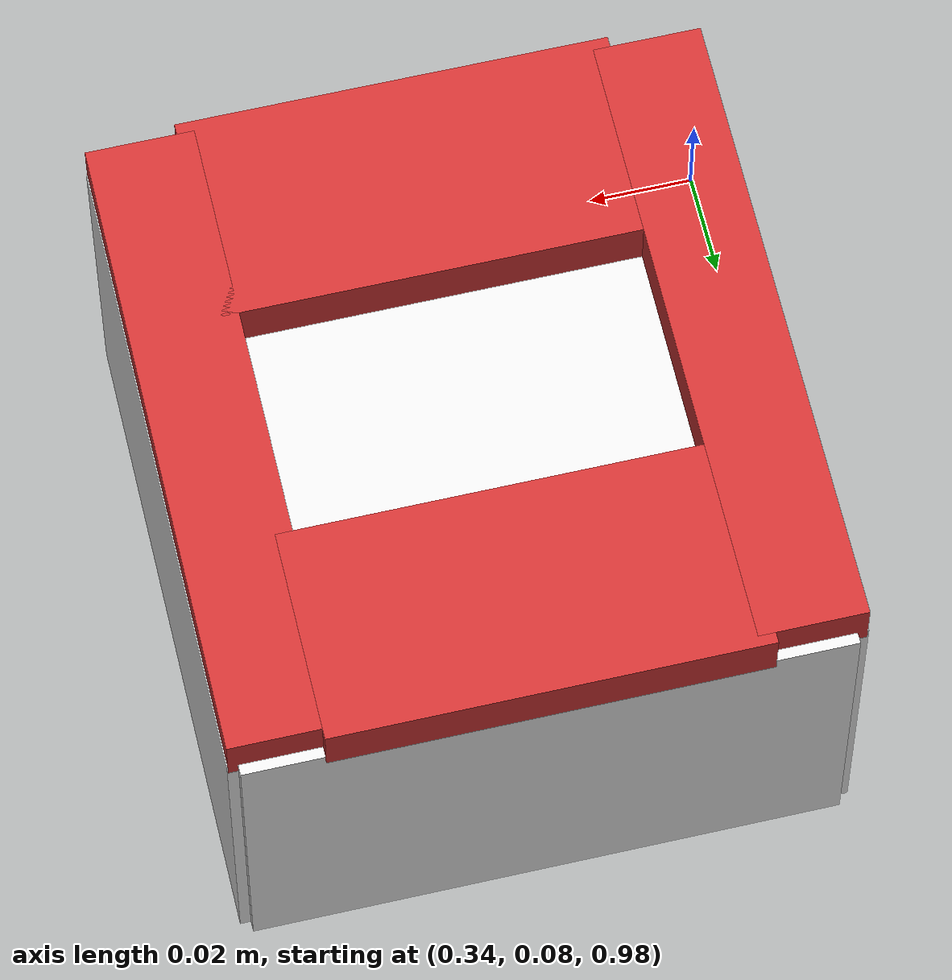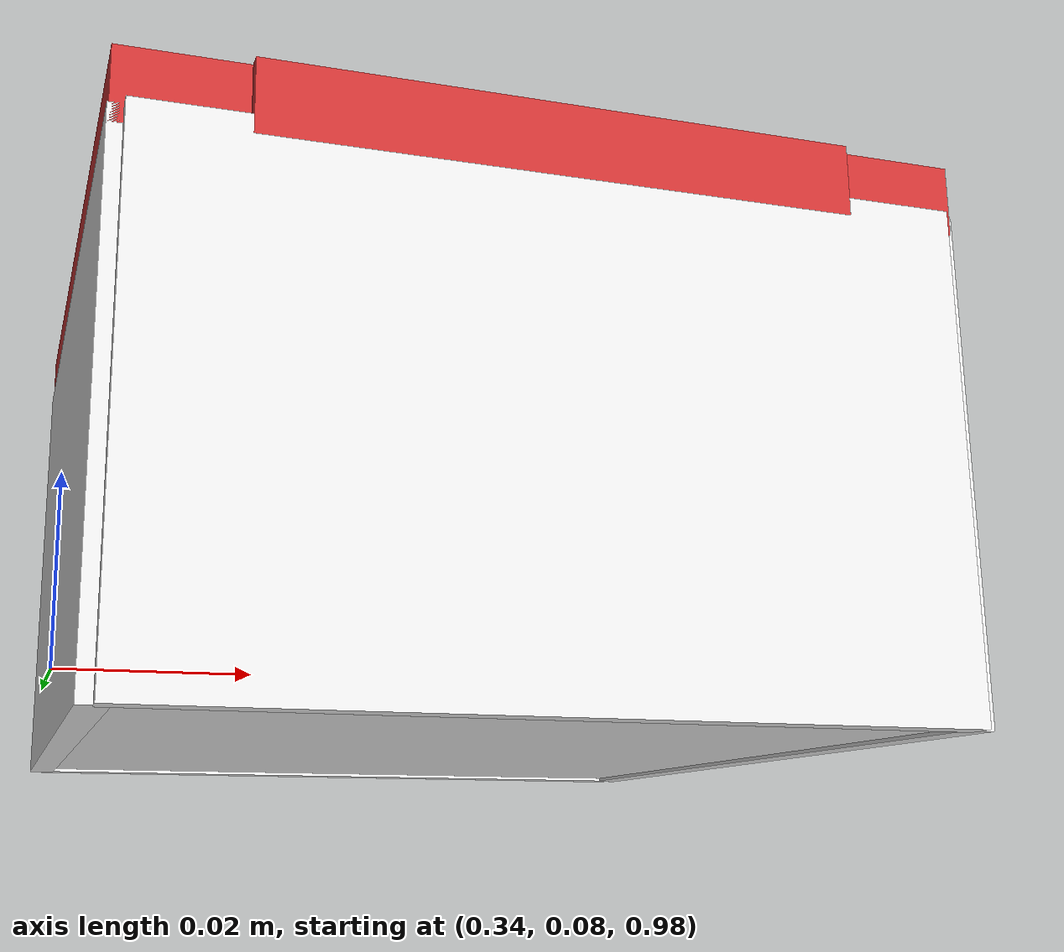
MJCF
<mujoco model="assembly_hole">

  <asset>
    <texture type="2d" name="hole" builtin="flat" rgb1="0.8 0.2 0.2" width="300" height="300"/>
    <material name="hole" texture="hole"/>

     <texture type="2d" name="hole_box" builtin="flat" rgb1="0.9 0.9 0.9" width="300" height="300"/>
    <material name="hole_box" texture="hole_box"/>

  </asset>

  <worldbody>
   <!-- table top is @ 1 m -->
    <body name="hole" pos="0.4 0.15 1.05" quat="1 0 0 0" mocap="true">
      <geom name="interactive_geom" type="box" pos="0.0 0.0 0.02" size="0.01 0.01  0.01" material="hole" group="5"  conaffinity="0" contype="0" />
      <body name="down" pos="-0.00 -0.042 0.0" quat="1 0 0 0">
        <geom name="down_geom" type="box" size="0.04 0.02  0.005" material="hole"/>
      </body>
      <body name="left" pos="-0.0468 0 0.0" quat="1 0 0 0">
        <geom name="left_geom" type="box" size="0.01 0.06 0.005" material="hole"/>
      </body>
      <body name="top" pos="0.0 0.042 0.0" quat="1 0 0 0">
        <geom name="top_geom" type="box" size="0.04 0.02 0.005" material="hole"/>
      </body>
      <body name="right" pos="0.0468 0 0.0" quat="1 0 0 0">
        <geom name="right_geom" type="box" size="0.01 0.06 0.005" material="hole"/>
      </body>
        <site name="hole_site" pos="0 0 -0.03" size="0.01" rgba="0.5 0.0 0.0 0.3" group="5"/>

      <body name="down_box" pos="-0.00 -0.06 -0.0375" quat="1 0 0 0">
        <geom name="down_box_geom" type="box" size="0.055 0.002  0.035" material="hole_box"/>
      </body>
      <body name="left_box" pos="-0.055 0 -0.0375" quat="1 0 0 0">
        <geom name="left_box_geom" type="box" size="0.002 0.06 0.035" material="hole_box"/>
      </body>
      <body name="top_box" pos="0.0 0.06 -0.0375" quat="1 0 0 0">
        <geom name="top_box_geom" type="box" size="0.055 0.002 0.035" material="hole_box"/>
      </body>
      <body name="right_box" pos="0.055 0 -0.0375" quat="1 0 0 0">
        <geom name="right_box_geom" type="box" size="0.002 0.06 0.035" material="hole_box"/>
      </body>
      <body name="bottom_box" pos="0.0 0 -0.07" quat="1 0 0 0">
        <geom name="bottom_box_geom" type="box" size="0.055 0.06 0.002" material="hole_box"/>
      </body>

    </body>

  </worldbody>

</mujoco>
